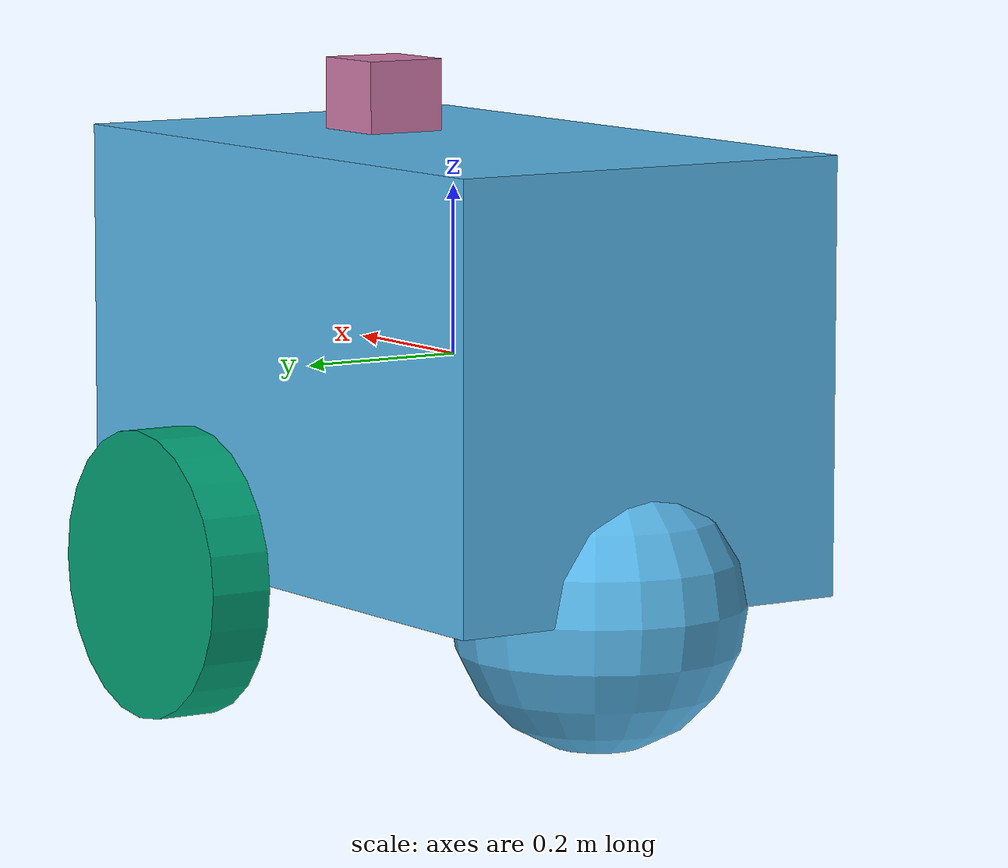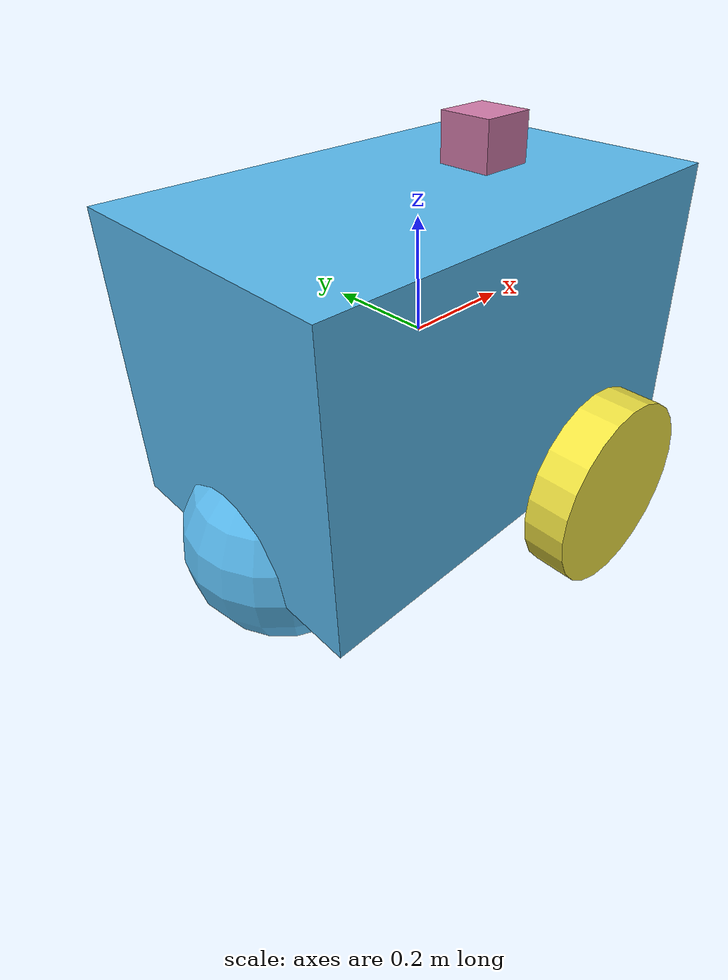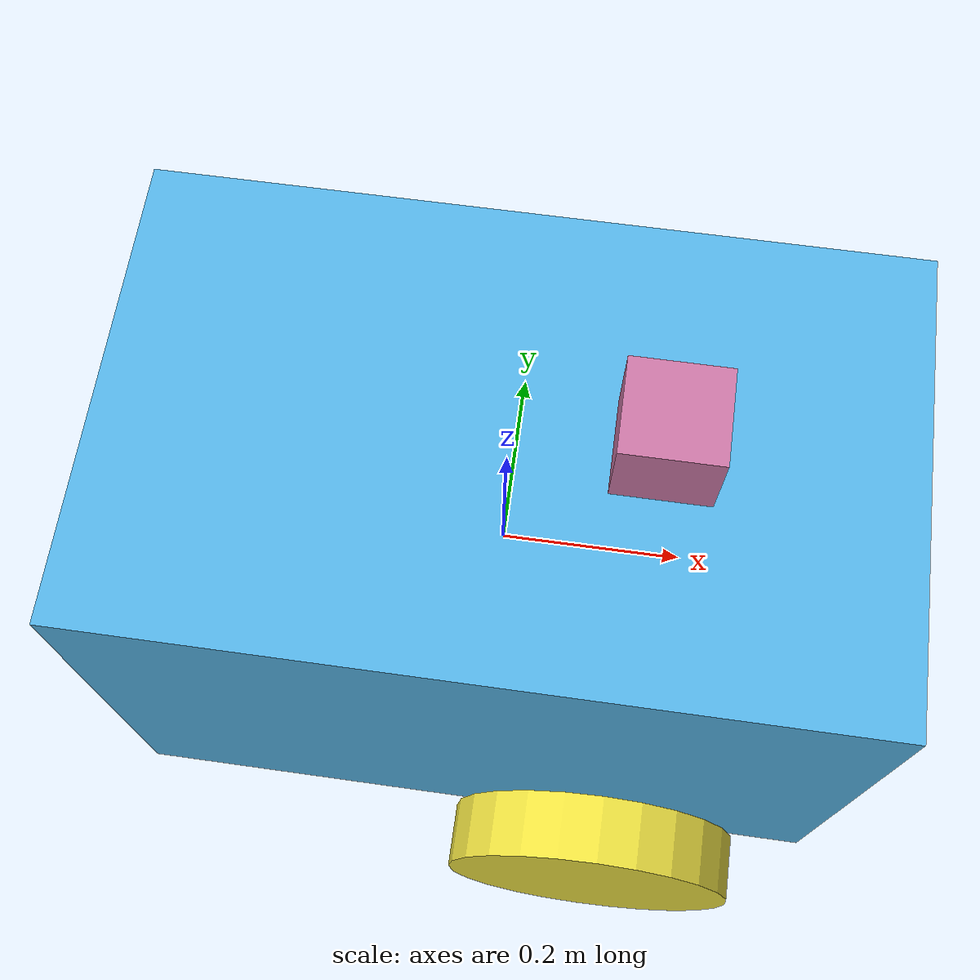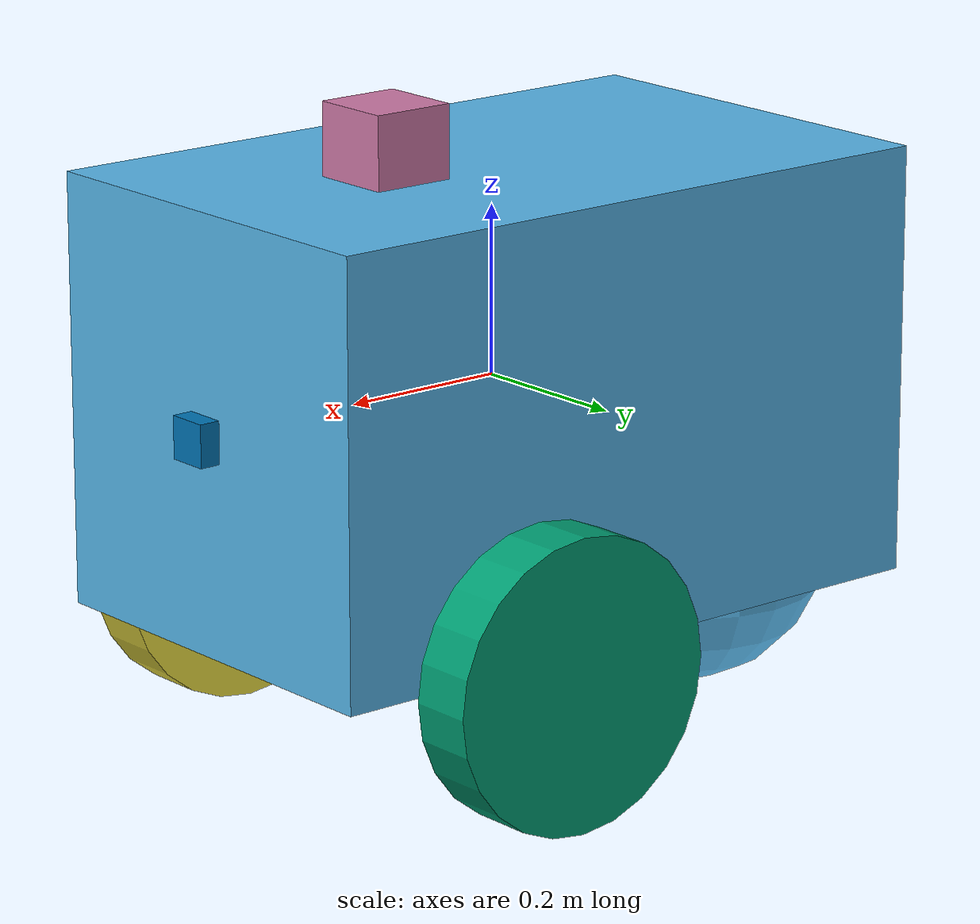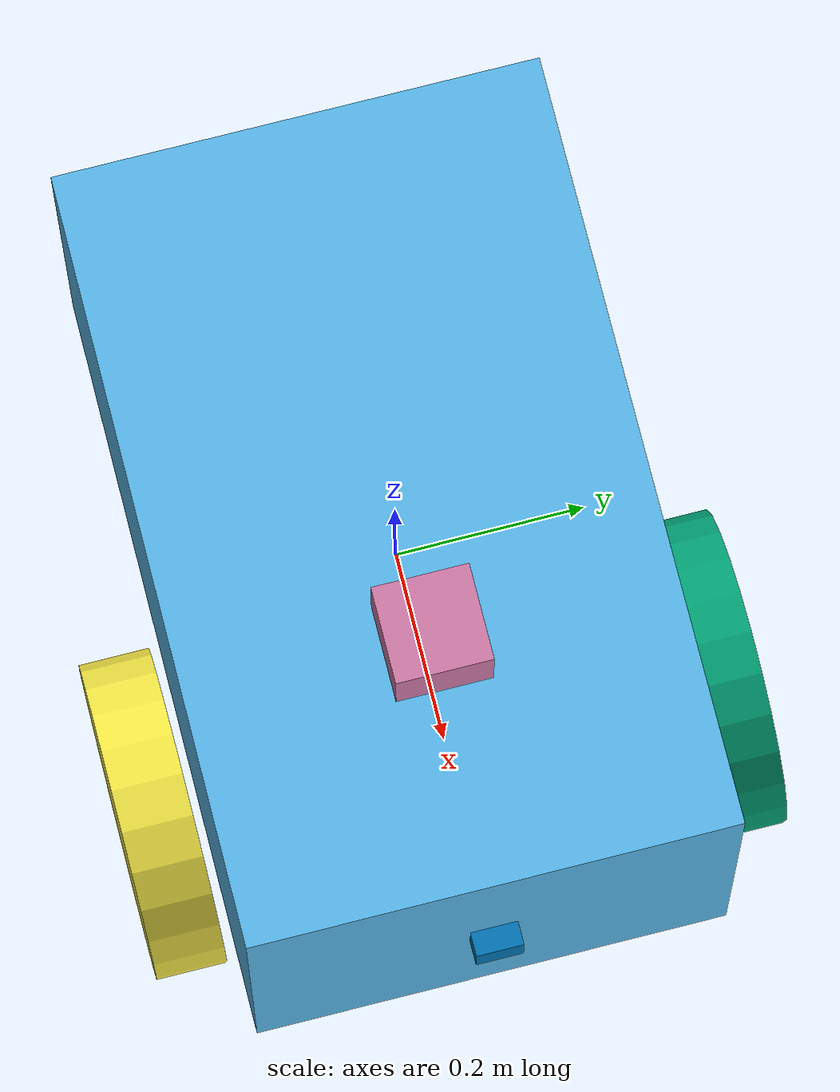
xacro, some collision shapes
<?xml version='1.0'?>

<robot name="slam_bot" xmlns:xacro="http://www.ros.org/wiki/xacro">

  <xacro:include filename="$(find slam_project)/urdf/slam_bot.gazebo" />

  <link name="robot_footprint"></link>

  <joint name="robot_footprint_joint" type="fixed">
    <origin xyz="0 0 0" rpy="0 0 0" />
    <parent link="robot_footprint"/>
    <child link="chassis" />
  </joint>

  <link name='chassis'>
    <pose>0 0 0.1 0 0 0</pose>

    <inertial>
      <mass value="30.0"/>
      <origin xyz="0 0 0" rpy=" 0 0 0"/>
      <inertia
          ixx="1.29" ixy="0" ixz="0"
          iyy="2.3" iyz="0"
          izz="2.3"
      />
    </inertial>

    <collision name='collision'>
      <origin xyz="0 0 0" rpy=" 0 0 0"/>
      <geometry>
        <box size=".8128 .508 .508"/>
      </geometry>
    </collision>

    <visual name='chassis_visual'>
      <origin xyz="0 0 0" rpy=" 0 0 0"/>
      <geometry>
        <box size=".8128 .508 .508"/>
      </geometry>
    </visual>

    <collision name='back_caster_collision'>
      <origin xyz="-0.3 0 -0.254" rpy=" 0 0 0"/>
      <geometry>
        <sphere radius="0.1709"/>
      </geometry>
      <surface>
        <friction>
          <ode>
            <mu>0</mu>
            <mu2>0</mu2>
            <slip1>1.0</slip1>
            <slip2>1.0</slip2>
          </ode>
        </friction>
      </surface>
    </collision>

    <visual name='back_caster_visual'>
      <origin xyz="-0.3 0 -0.254" rpy=" 0 0 0"/>
      <geometry>
        <sphere radius="0.171"/>
      </geometry>
    </visual>

  </link>

  <link name="left_wheel">

    <inertial>
      <mass value="5.0"/>
      <origin xyz="0 0 0" rpy="0 1.5707 1.5707"/>
      <inertia
          ixx="0.1" ixy="0" ixz="0"
          iyy="0.1" iyz="0"
          izz="0.1"
      />
    </inertial>

    <collision name='left_wheel_collision'>
      <origin xyz=" 0 0 0" rpy=" 0 1.5707 1.5707"/>
      <geometry>
        <cylinder radius="0.171" length="0.076"/>
      </geometry>
      <surface>
        <friction>
          <ode>
            <mu>0</mu>
            <mu2>0</mu2>
            <slip1>0.01</slip1>
            <slip2>0.01</slip2>
          </ode>
        </friction>
      </surface>
    </collision>

    <visual name='left_wheel_visual'>
      <origin xyz=" 0 0 0" rpy=" 0 1.5707 1.5707"/>
      <geometry>
        <cylinder radius="0.171" length="0.076"/>
      </geometry>
    </visual>
  </link>

  <joint type="continuous" name="left_wheel_hinge">
    <origin xyz="0.1524 0.304 -0.254" rpy="0 0 0"/>
    <child link="left_wheel"/>
    <parent link="chassis"/>
    <axis xyz="0 1 0" rpy="0 0 0"/>
    <limit effort="10000" velocity="1000"/>
    <joint_properties damping="1.0" friction="1.0"/>
  </joint>

  <link name="right_wheel">

    <inertial>
      <mass value="5.0"/>
      <origin xyz="0 0 0" rpy="0 1.5707 1.5707"/>
      <inertia
          ixx="0.1" ixy="0" ixz="0"
          iyy="0.1" iyz="0"
          izz="0.1"
      />
    </inertial>

    <collision name='right_wheel_collision'>
      <origin xyz="0 0 0" rpy="0 1.5707 1.5707"/>
      <geometry>
        <cylinder radius="0.171" length="0.076"/>
      </geometry>
      <surface>
        <friction>
          <ode>
            <mu>0</mu>
            <mu2>0</mu2>
            <slip1>0.01</slip1>
            <slip2>0.01</slip2>
          </ode>
        </friction>
      </surface>
    </collision>

    <visual name='right_wheel_visual'>
      <origin xyz="0 0 0" rpy="0 1.5707 1.5707"/>
      <geometry>
        <cylinder radius="0.171" length="0.076"/>
      </geometry>
    </visual>
  </link>

  <joint type="continuous" name="right_wheel_hinge">
    <origin xyz="0.1524 -0.304 -0.254" rpy="0 0 0"/>
    <child link="right_wheel"/>
    <parent link="chassis"/>
    <axis xyz="0 1 0" rpy="0 0 0"/>
    <limit effort="10000" velocity="1000"/>
    <joint_properties damping="1.0" friction="1.0"/>
  </joint>

  <link name="camera_link">

    <inertial>
      <mass value="0.1"/>
      <origin xyz=" 0 0 0" rpy=" 0 0 0"/>
      <inertia
          ixx="1e-6" ixy="0" ixz="0"
          iyy="1e-6" iyz="0"
          izz="1e-6"
      />
    </inertial>

    <collision name='camera_collision'>
      <origin xyz=" 0 0 0" rpy=" 0 0 0"/>
      <geometry>
        <box size="0.05 0.05 0.05"/>
      </geometry>
    </collision>

    <visual name='camera_visual'>
      <origin xyz=" 0 0 0" rpy=" 0 0 0"/>
      <geometry>
        <box size="0.05 0.05 0.05"/>
      </geometry>
    </visual>
  </link>

  <joint type="fixed" name="camera_joint">
    <origin xyz="0.4064 0 0" rpy="0 0 0"/>
    <child link="camera_link"/>
    <parent link="chassis"/>
  </joint>

  <!-- Added based on  https://answers.ros.org/question/232534/gazebo-camera-frame-is-inconsistent-with-rviz-opencv-convention/?answer=232562#post-id-232562-->
  <joint name="camera_optical_joint" type="fixed">
    <!-- these values have to be these values otherwise the gazebo camera
        image won't be aligned properly with the frame it is supposedly
        originating from -->
    <origin xyz="0 0 0" rpy="${-pi/2} 0 ${-pi/2}"/>
    <parent link="camera_link"/>
    <child link="camera_rgbd_frame"/>
  </joint>

  <link name="camera_rgbd_frame">
  </link>

  <link name="hokuyo">

    <inertial>
      <mass value="0.1"/>
      <origin xyz=" 0 0 0" rpy=" 0 0 0"/>
      <inertia
          ixx="1e-6" ixy="0" ixz="0"
          iyy="1e-6" iyz="0"
          izz="1e-6"
      />
    </inertial>

    <collision name='hokuyo_collision'>
      <origin xyz=" 0 0 0" rpy=" 0 0 0"/>
      <geometry>
        <box size="0.1 0.1 0.1"/>
      </geometry>
    </collision>

    <visual name='hokuyo_visual'>
      <origin xyz=" 0 0 0" rpy=" 0 0 0"/>
      <geometry>
        <mesh filename="package://slam_project/meshes/hokuyo.dae"/>
      </geometry>
    </visual>
  </link>

  <joint type="fixed" name="hokuyo_joint">
    <origin xyz="0.1524 0.0 0.29" rpy="0 0 0"/>
    <child link="hokuyo"/>
    <parent link="chassis"/>
  </joint>

</robot>
